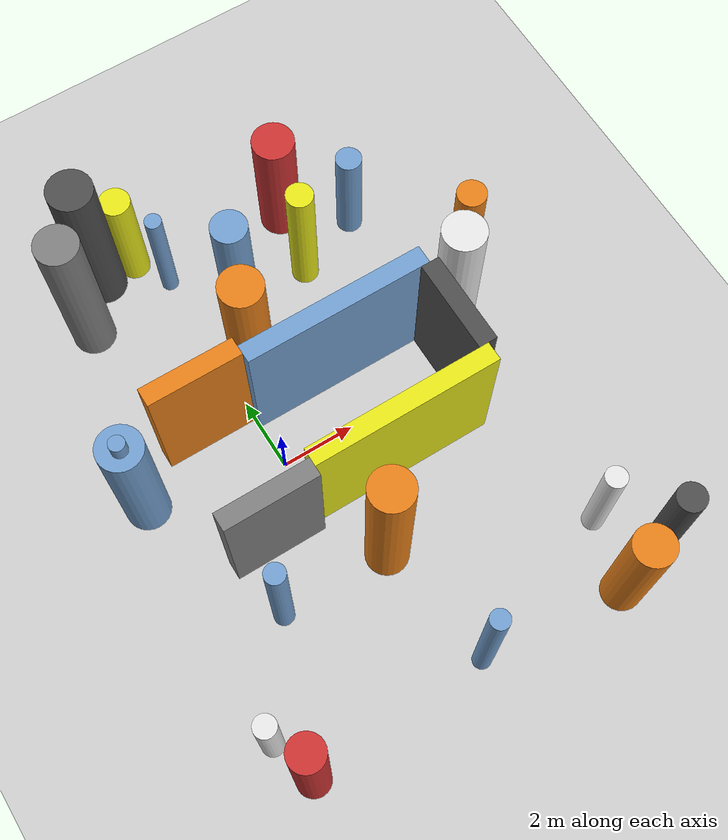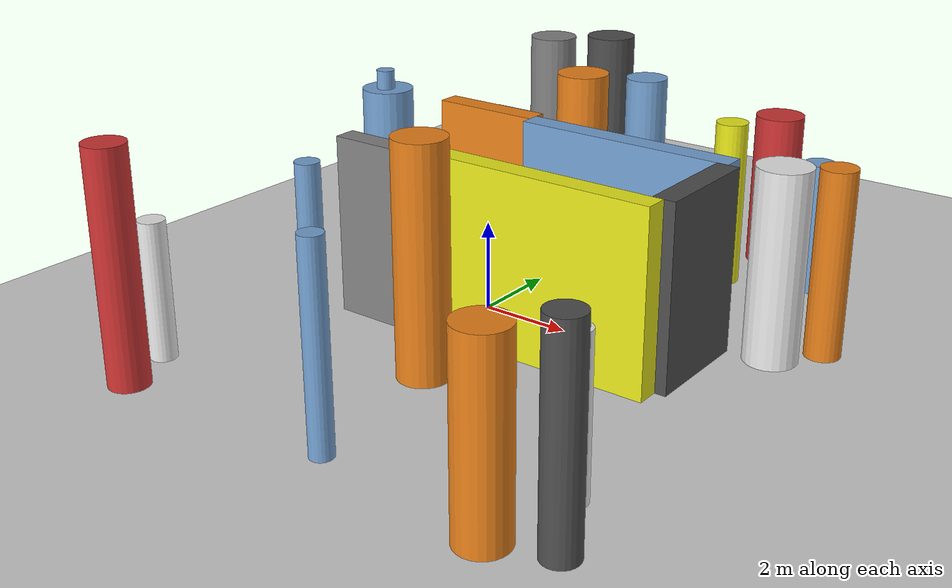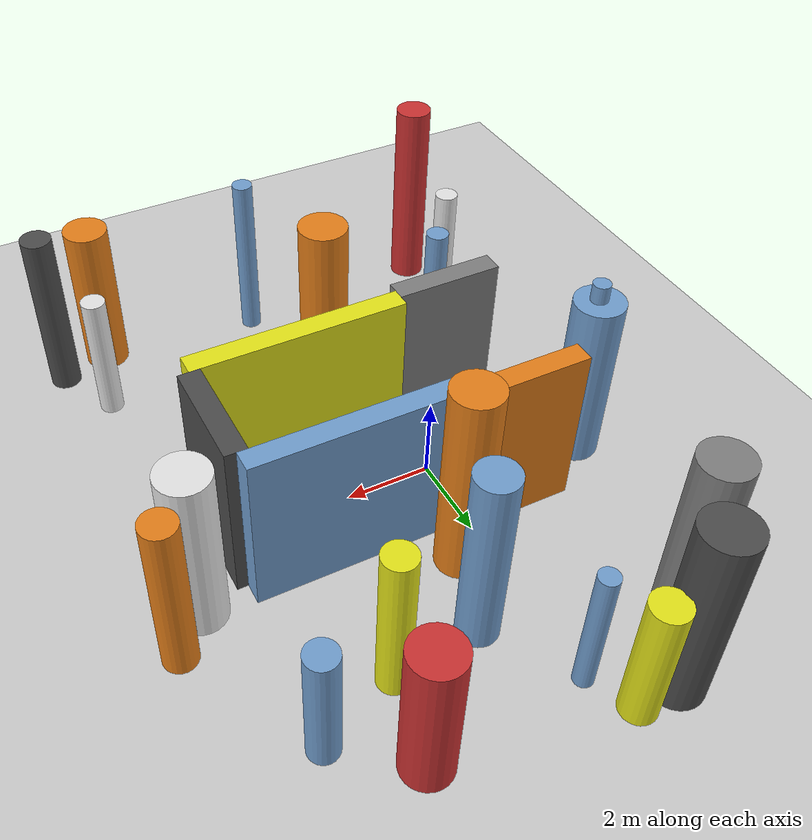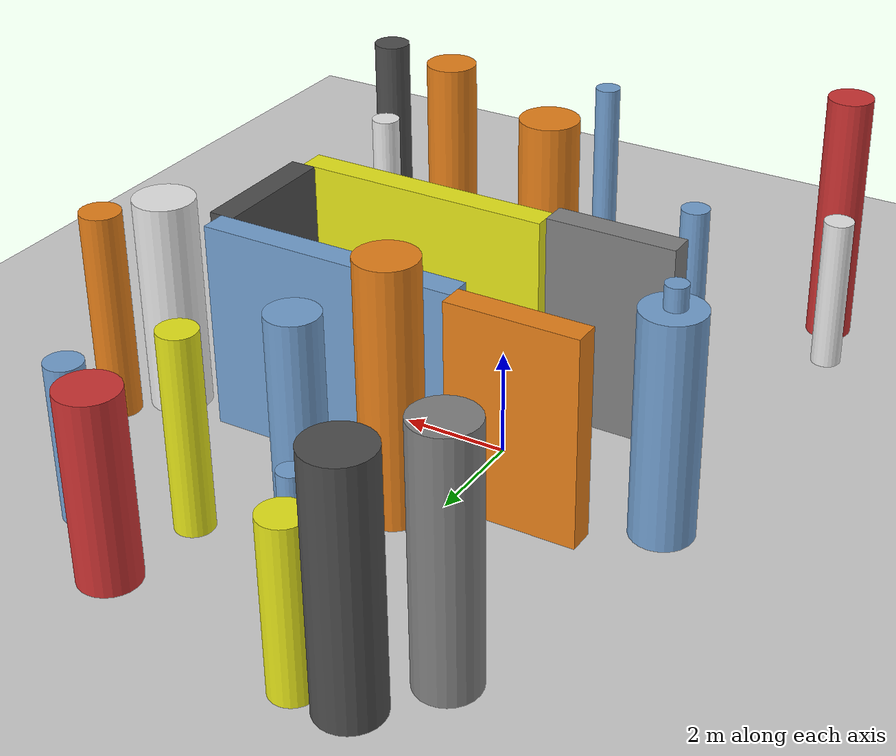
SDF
<?xml version='1.0'?>
<sdf version='1.6'>
  <world name='routeA_rl_v1__dense_recovery__rl_val__cul_de_sac_trap__000020'>
    <!-- Sun light -->
    <light name='sun' type='directional'>
      <cast_shadows>1</cast_shadows>
      <pose>0 0 10 0 0 0</pose>
      <diffuse>0.8 0.8 0.8 1</diffuse>
      <specular>0.2 0.2 0.2 1</specular>
      <attenuation>
        <range>1000</range>
        <constant>0.9</constant>
        <linear>0.01</linear>
        <quadratic>0.001</quadratic>
      </attenuation>
      <direction>-0.5 0.1 -0.9</direction>
    </light>

    <!-- Ground plane -->
    <model name='ground_plane'>
      <static>1</static>
      <link name='link'>
        <collision name='collision'>
          <geometry>
            <plane>
              <normal>0 0 1</normal>
              <size>100 100</size>
            </plane>
          </geometry>
          <surface>
            <contact>
              <collide_bitmask>65535</collide_bitmask>
              <ode/>
            </contact>
            <friction>
              <ode>
                <mu>100</mu>
                <mu2>50</mu2>
              </ode>
              <torsional><ode/></torsional>
            </friction>
            <bounce/>
          </surface>
          <max_contacts>10</max_contacts>
        </collision>
        <visual name='visual'>
          <cast_shadows>0</cast_shadows>
          <geometry>
            <plane>
              <normal>0 0 1</normal>
              <size>100 100</size>
            </plane>
          </geometry>
          <material>
            <script>
              <uri>file://media/materials/scripts/gazebo.material</uri>
              <n>Gazebo/Grey</n>
            </script>
          </material>
        </visual>
      </link>
    </model>

    <!-- Environment -->
    <magnetic_field>6e-06 2.3e-05 -4.2e-05</magnetic_field>
    <atmosphere type='adiabatic'/>
    <physics name='default_physics' default='0' type='ode'>
      <gravity>0 0 -9.8</gravity>
      <max_step_size>0.004</max_step_size>
      <real_time_factor>1</real_time_factor>
      <real_time_update_rate>250</real_time_update_rate>
    </physics>
    <scene>
      <ambient>0.4 0.4 0.4 1</ambient>
      <background>0.7 0.7 0.7 1</background>
      <shadows>1</shadows>
    </scene>
    <wind/>
    <spherical_coordinates>
      <surface_model>EARTH_WGS84</surface_model>
      <latitude_deg>0</latitude_deg>
      <longitude_deg>0</longitude_deg>
      <elevation>0</elevation>
      <heading_deg>0</heading_deg>
    </spherical_coordinates>

    <!-- ============ OBSTACLES (26) ============ -->
    <model name='trap_side_l'>
      <static>1</static>
      <link name='link'>
        <visual name='visual'>
          <geometry>
            <box>
              <size>5.0000 0.5000 4.0000</size>
            </box>
          </geometry>
          <material>
            <script>
              <n>Gazebo/Yellow</n>
              <uri>file://media/materials/scripts/gazebo.material</uri>
            </script>
            <ambient>0.9 0.9 0.1 1</ambient>
          </material>
        </visual>
        <collision name='collision'>
          <geometry>
            <box>
              <size>5.0000 0.5000 4.0000</size>
            </box>
          </geometry>
          <max_contacts>10</max_contacts>
          <surface>
            <contact><ode/></contact>
            <bounce/>
            <friction>
              <ode><mu>1</mu><mu2>1</mu2></ode>
              <torsional><ode/></torsional>
            </friction>
          </surface>
        </collision>
      </link>
      <pose>2.5000 -1.5000 2.0000 0 0 0.0000</pose>
    </model>

    <model name='trap_side_r'>
      <static>1</static>
      <link name='link'>
        <visual name='visual'>
          <geometry>
            <box>
              <size>5.0000 0.5000 4.0000</size>
            </box>
          </geometry>
          <material>
            <script>
              <n>Gazebo/Blue</n>
              <uri>file://media/materials/scripts/gazebo.material</uri>
            </script>
            <ambient>0.447 0.624 0.812 1</ambient>
          </material>
        </visual>
        <collision name='collision'>
          <geometry>
            <box>
              <size>5.0000 0.5000 4.0000</size>
            </box>
          </geometry>
          <max_contacts>10</max_contacts>
          <surface>
            <contact><ode/></contact>
            <bounce/>
            <friction>
              <ode><mu>1</mu><mu2>1</mu2></ode>
              <torsional><ode/></torsional>
            </friction>
          </surface>
        </collision>
      </link>
      <pose>2.5000 1.5000 2.0000 0 0 0.0000</pose>
    </model>

    <model name='trap_back'>
      <static>1</static>
      <link name='link'>
        <visual name='visual'>
          <geometry>
            <box>
              <size>0.5000 2.5000 4.0000</size>
            </box>
          </geometry>
          <material>
            <script>
              <n>Gazebo/DarkGrey</n>
              <uri>file://media/materials/scripts/gazebo.material</uri>
            </script>
            <ambient>0.3 0.3 0.3 1</ambient>
          </material>
        </visual>
        <collision name='collision'>
          <geometry>
            <box>
              <size>0.5000 2.5000 4.0000</size>
            </box>
          </geometry>
          <max_contacts>10</max_contacts>
          <surface>
            <contact><ode/></contact>
            <bounce/>
            <friction>
              <ode><mu>1</mu><mu2>1</mu2></ode>
              <torsional><ode/></torsional>
            </friction>
          </surface>
        </collision>
      </link>
      <pose>5.0000 0.0000 2.0000 0 0 0.0000</pose>
    </model>

    <model name='trap_funnel_l'>
      <static>1</static>
      <link name='link'>
        <visual name='visual'>
          <geometry>
            <box>
              <size>2.5000 0.5000 4.0000</size>
            </box>
          </geometry>
          <material>
            <script>
              <n>Gazebo/Grey</n>
              <uri>file://media/materials/scripts/gazebo.material</uri>
            </script>
            <ambient>0.5 0.5 0.5 1</ambient>
          </material>
        </visual>
        <collision name='collision'>
          <geometry>
            <box>
              <size>2.5000 0.5000 4.0000</size>
            </box>
          </geometry>
          <max_contacts>10</max_contacts>
          <surface>
            <contact><ode/></contact>
            <bounce/>
            <friction>
              <ode><mu>1</mu><mu2>1</mu2></ode>
              <torsional><ode/></torsional>
            </friction>
          </surface>
        </collision>
      </link>
      <pose>-1.2500 -1.7500 2.0000 0 0 0.0000</pose>
    </model>

    <model name='trap_funnel_r'>
      <static>1</static>
      <link name='link'>
        <visual name='visual'>
          <geometry>
            <box>
              <size>2.5000 0.5000 4.0000</size>
            </box>
          </geometry>
          <material>
            <script>
              <n>Gazebo/Orange</n>
              <uri>file://media/materials/scripts/gazebo.material</uri>
            </script>
            <ambient>0.9 0.5 0.1 1</ambient>
          </material>
        </visual>
        <collision name='collision'>
          <geometry>
            <box>
              <size>2.5000 0.5000 4.0000</size>
            </box>
          </geometry>
          <max_contacts>10</max_contacts>
          <surface>
            <contact><ode/></contact>
            <bounce/>
            <friction>
              <ode><mu>1</mu><mu2>1</mu2></ode>
              <torsional><ode/></torsional>
            </friction>
          </surface>
        </collision>
      </link>
      <pose>-1.2500 1.7500 2.0000 0 0 0.0000</pose>
    </model>

    <model name='trap_scatter_1'>
      <static>1</static>
      <link name='link'>
        <visual name='visual'>
          <geometry>
            <cylinder>
              <radius>0.2843</radius>
              <length>3.2258</length>
            </cylinder>
          </geometry>
          <material>
            <script>
              <n>Gazebo/White</n>
              <uri>file://media/materials/scripts/gazebo.material</uri>
            </script>
            <ambient>0.9 0.9 0.9 1</ambient>
          </material>
        </visual>
        <collision name='collision'>
          <geometry>
            <cylinder>
              <radius>0.2843</radius>
              <length>3.2258</length>
            </cylinder>
          </geometry>
          <max_contacts>10</max_contacts>
          <surface>
            <contact><ode/></contact>
            <bounce/>
            <friction>
              <ode><mu>1</mu><mu2>1</mu2></ode>
              <torsional><ode/></torsional>
            </friction>
          </surface>
        </collision>
      </link>
      <pose>5.8639 -5.3591 1.6129 0 0 0.0000</pose>
    </model>

    <model name='trap_scatter_2'>
      <static>1</static>
      <link name='link'>
        <visual name='visual'>
          <geometry>
            <cylinder>
              <radius>0.3463</radius>
              <length>3.0274</length>
            </cylinder>
          </geometry>
          <material>
            <script>
              <n>Gazebo/Blue</n>
              <uri>file://media/materials/scripts/gazebo.material</uri>
            </script>
            <ambient>0.447 0.624 0.812 1</ambient>
          </material>
        </visual>
        <collision name='collision'>
          <geometry>
            <cylinder>
              <radius>0.3463</radius>
              <length>3.0274</length>
            </cylinder>
          </geometry>
          <max_contacts>10</max_contacts>
          <surface>
            <contact><ode/></contact>
            <bounce/>
            <friction>
              <ode><mu>1</mu><mu2>1</mu2></ode>
              <torsional><ode/></torsional>
            </friction>
          </surface>
        </collision>
      </link>
      <pose>5.2068 5.2961 1.5137 0 0 0.0000</pose>
    </model>

    <model name='trap_scatter_3'>
      <static>1</static>
      <link name='link'>
        <visual name='visual'>
          <geometry>
            <cylinder>
              <radius>0.5958</radius>
              <length>4.6377</length>
            </cylinder>
          </geometry>
          <material>
            <script>
              <n>Gazebo/DarkGrey</n>
              <uri>file://media/materials/scripts/gazebo.material</uri>
            </script>
            <ambient>0.3 0.3 0.3 1</ambient>
          </material>
        </visual>
        <collision name='collision'>
          <geometry>
            <cylinder>
              <radius>0.5958</radius>
              <length>4.6377</length>
            </cylinder>
          </geometry>
          <max_contacts>10</max_contacts>
          <surface>
            <contact><ode/></contact>
            <bounce/>
            <friction>
              <ode><mu>1</mu><mu2>1</mu2></ode>
              <torsional><ode/></torsional>
            </friction>
          </surface>
        </collision>
      </link>
      <pose>-1.4748 7.1160 2.3188 0 0 0.0000</pose>
    </model>

    <model name='trap_scatter_4'>
      <static>1</static>
      <link name='link'>
        <visual name='visual'>
          <geometry>
            <cylinder>
              <radius>0.4701</radius>
              <length>4.5546</length>
            </cylinder>
          </geometry>
          <material>
            <script>
              <n>Gazebo/Blue</n>
              <uri>file://media/materials/scripts/gazebo.material</uri>
            </script>
            <ambient>0.447 0.624 0.812 1</ambient>
          </material>
        </visual>
        <collision name='collision'>
          <geometry>
            <cylinder>
              <radius>0.4701</radius>
              <length>4.5546</length>
            </cylinder>
          </geometry>
          <max_contacts>10</max_contacts>
          <surface>
            <contact><ode/></contact>
            <bounce/>
            <friction>
              <ode><mu>1</mu><mu2>1</mu2></ode>
              <torsional><ode/></torsional>
            </friction>
          </surface>
        </collision>
      </link>
      <pose>1.2798 4.2999 2.2773 0 0 0.0000</pose>
    </model>

    <model name='trap_scatter_5'>
      <static>1</static>
      <link name='link'>
        <visual name='visual'>
          <geometry>
            <cylinder>
              <radius>0.5782</radius>
              <length>4.1618</length>
            </cylinder>
          </geometry>
          <material>
            <script>
              <n>Gazebo/White</n>
              <uri>file://media/materials/scripts/gazebo.material</uri>
            </script>
            <ambient>0.9 0.9 0.9 1</ambient>
          </material>
        </visual>
        <collision name='collision'>
          <geometry>
            <cylinder>
              <radius>0.5782</radius>
              <length>4.1618</length>
            </cylinder>
          </geometry>
          <max_contacts>10</max_contacts>
          <surface>
            <contact><ode/></contact>
            <bounce/>
            <friction>
              <ode><mu>1</mu><mu2>1</mu2></ode>
              <torsional><ode/></torsional>
            </friction>
          </surface>
        </collision>
      </link>
      <pose>6.1142 1.4479 2.0809 0 0 0.0000</pose>
    </model>

    <model name='trap_scatter_6'>
      <static>1</static>
      <link name='link'>
        <visual name='visual'>
          <geometry>
            <cylinder>
              <radius>0.5815</radius>
              <length>4.2810</length>
            </cylinder>
          </geometry>
          <material>
            <script>
              <n>Gazebo/Blue</n>
              <uri>file://media/materials/scripts/gazebo.material</uri>
            </script>
            <ambient>0.447 0.624 0.812 1</ambient>
          </material>
        </visual>
        <collision name='collision'>
          <geometry>
            <cylinder>
              <radius>0.5815</radius>
              <length>4.2810</length>
            </cylinder>
          </geometry>
          <max_contacts>10</max_contacts>
          <surface>
            <contact><ode/></contact>
            <bounce/>
            <friction>
              <ode><mu>1</mu><mu2>1</mu2></ode>
              <torsional><ode/></torsional>
            </friction>
          </surface>
        </collision>
      </link>
      <pose>-3.5306 0.8192 2.1405 0 0 0.0000</pose>
    </model>

    <model name='trap_scatter_7'>
      <static>1</static>
      <link name='link'>
        <visual name='visual'>
          <geometry>
            <cylinder>
              <radius>0.3859</radius>
              <length>4.0550</length>
            </cylinder>
          </geometry>
          <material>
            <script>
              <n>Gazebo/Orange</n>
              <uri>file://media/materials/scripts/gazebo.material</uri>
            </script>
            <ambient>0.9 0.5 0.1 1</ambient>
          </material>
        </visual>
        <collision name='collision'>
          <geometry>
            <cylinder>
              <radius>0.3859</radius>
              <length>4.0550</length>
            </cylinder>
          </geometry>
          <max_contacts>10</max_contacts>
          <surface>
            <contact><ode/></contact>
            <bounce/>
            <friction>
              <ode><mu>1</mu><mu2>1</mu2></ode>
              <torsional><ode/></torsional>
            </friction>
          </surface>
        </collision>
      </link>
      <pose>6.8826 2.2773 2.0275 0 0 0.0000</pose>
    </model>

    <model name='trap_scatter_8'>
      <static>1</static>
      <link name='link'>
        <visual name='visual'>
          <geometry>
            <cylinder>
              <radius>0.5681</radius>
              <length>4.9190</length>
            </cylinder>
          </geometry>
          <material>
            <script>
              <n>Gazebo/Orange</n>
              <uri>file://media/materials/scripts/gazebo.material</uri>
            </script>
            <ambient>0.9 0.5 0.1 1</ambient>
          </material>
        </visual>
        <collision name='collision'>
          <geometry>
            <cylinder>
              <radius>0.5681</radius>
              <length>4.9190</length>
            </cylinder>
          </geometry>
          <max_contacts>10</max_contacts>
          <surface>
            <contact><ode/></contact>
            <bounce/>
            <friction>
              <ode><mu>1</mu><mu2>1</mu2></ode>
              <torsional><ode/></torsional>
            </friction>
          </surface>
        </collision>
      </link>
      <pose>0.6589 2.5912 2.4595 0 0 0.0000</pose>
    </model>

    <model name='trap_scatter_10'>
      <static>1</static>
      <link name='link'>
        <visual name='visual'>
          <geometry>
            <cylinder>
              <radius>0.5653</radius>
              <length>4.9940</length>
            </cylinder>
          </geometry>
          <material>
            <script>
              <n>Gazebo/Orange</n>
              <uri>file://media/materials/scripts/gazebo.material</uri>
            </script>
            <ambient>0.9 0.5 0.1 1</ambient>
          </material>
        </visual>
        <collision name='collision'>
          <geometry>
            <cylinder>
              <radius>0.5653</radius>
              <length>4.9940</length>
            </cylinder>
          </geometry>
          <max_contacts>10</max_contacts>
          <surface>
            <contact><ode/></contact>
            <bounce/>
            <friction>
              <ode><mu>1</mu><mu2>1</mu2></ode>
              <torsional><ode/></torsional>
            </friction>
          </surface>
        </collision>
      </link>
      <pose>0.9677 -3.3815 2.4970 0 0 0.0000</pose>
    </model>

    <model name='trap_scatter_11'>
      <static>1</static>
      <link name='link'>
        <visual name='visual'>
          <geometry>
            <cylinder>
              <radius>0.5607</radius>
              <length>3.5897</length>
            </cylinder>
          </geometry>
          <material>
            <script>
              <n>Gazebo/Red</n>
              <uri>file://media/materials/scripts/gazebo.material</uri>
            </script>
            <ambient>0.8 0.2 0.2 1</ambient>
          </material>
        </visual>
        <collision name='collision'>
          <geometry>
            <cylinder>
              <radius>0.5607</radius>
              <length>3.5897</length>
            </cylinder>
          </geometry>
          <max_contacts>10</max_contacts>
          <surface>
            <contact><ode/></contact>
            <bounce/>
            <friction>
              <ode><mu>1</mu><mu2>1</mu2></ode>
              <torsional><ode/></torsional>
            </friction>
          </surface>
        </collision>
      </link>
      <pose>3.6595 6.4181 1.7949 0 0 0.0000</pose>
    </model>

    <model name='trap_scatter_12'>
      <static>1</static>
      <link name='link'>
        <visual name='visual'>
          <geometry>
            <cylinder>
              <radius>0.3624</radius>
              <length>3.8035</length>
            </cylinder>
          </geometry>
          <material>
            <script>
              <n>Gazebo/Yellow</n>
              <uri>file://media/materials/scripts/gazebo.material</uri>
            </script>
            <ambient>0.9 0.9 0.1 1</ambient>
          </material>
        </visual>
        <collision name='collision'>
          <geometry>
            <cylinder>
              <radius>0.3624</radius>
              <length>3.8035</length>
            </cylinder>
          </geometry>
          <max_contacts>10</max_contacts>
          <surface>
            <contact><ode/></contact>
            <bounce/>
            <friction>
              <ode><mu>1</mu><mu2>1</mu2></ode>
              <torsional><ode/></torsional>
            </friction>
          </surface>
        </collision>
      </link>
      <pose>3.3587 4.5884 1.9018 0 0 0.0000</pose>
    </model>

    <model name='trap_scatter_13'>
      <static>1</static>
      <link name='link'>
        <visual name='visual'>
          <geometry>
            <cylinder>
              <radius>0.2461</radius>
              <length>4.2716</length>
            </cylinder>
          </geometry>
          <material>
            <script>
              <n>Gazebo/Blue</n>
              <uri>file://media/materials/scripts/gazebo.material</uri>
            </script>
            <ambient>0.447 0.624 0.812 1</ambient>
          </material>
        </visual>
        <collision name='collision'>
          <geometry>
            <cylinder>
              <radius>0.2461</radius>
              <length>4.2716</length>
            </cylinder>
          </geometry>
          <max_contacts>10</max_contacts>
          <surface>
            <contact><ode/></contact>
            <bounce/>
            <friction>
              <ode><mu>1</mu><mu2>1</mu2></ode>
              <torsional><ode/></torsional>
            </friction>
          </surface>
        </collision>
      </link>
      <pose>1.5004 -6.8444 2.1358 0 0 0.0000</pose>
    </model>

    <model name='trap_scatter_14'>
      <static>1</static>
      <link name='link'>
        <visual name='visual'>
          <geometry>
            <cylinder>
              <radius>0.4073</radius>
              <length>3.2134</length>
            </cylinder>
          </geometry>
          <material>
            <script>
              <n>Gazebo/Yellow</n>
              <uri>file://media/materials/scripts/gazebo.material</uri>
            </script>
            <ambient>0.9 0.9 0.1 1</ambient>
          </material>
        </visual>
        <collision name='collision'>
          <geometry>
            <cylinder>
              <radius>0.4073</radius>
              <length>3.2134</length>
            </cylinder>
          </geometry>
          <max_contacts>10</max_contacts>
          <surface>
            <contact><ode/></contact>
            <bounce/>
            <friction>
              <ode><mu>1</mu><mu2>1</mu2></ode>
              <torsional><ode/></torsional>
            </friction>
          </surface>
        </collision>
      </link>
      <pose>-0.5128 7.1966 1.6067 0 0 0.0000</pose>
    </model>

    <model name='trap_scatter_15'>
      <static>1</static>
      <link name='link'>
        <visual name='visual'>
          <geometry>
            <cylinder>
              <radius>0.5677</radius>
              <length>4.7156</length>
            </cylinder>
          </geometry>
          <material>
            <script>
              <n>Gazebo/Grey</n>
              <uri>file://media/materials/scripts/gazebo.material</uri>
            </script>
            <ambient>0.5 0.5 0.5 1</ambient>
          </material>
        </visual>
        <collision name='collision'>
          <geometry>
            <cylinder>
              <radius>0.5677</radius>
              <length>4.7156</length>
            </cylinder>
          </geometry>
          <max_contacts>10</max_contacts>
          <surface>
            <contact><ode/></contact>
            <bounce/>
            <friction>
              <ode><mu>1</mu><mu2>1</mu2></ode>
              <torsional><ode/></torsional>
            </friction>
          </surface>
        </collision>
      </link>
      <pose>-2.4217 5.9026 2.3578 0 0 0.0000</pose>
    </model>

    <model name='trap_scatter_16'>
      <static>1</static>
      <link name='link'>
        <visual name='visual'>
          <geometry>
            <cylinder>
              <radius>0.2670</radius>
              <length>3.9010</length>
            </cylinder>
          </geometry>
          <material>
            <script>
              <n>Gazebo/Blue</n>
              <uri>file://media/materials/scripts/gazebo.material</uri>
            </script>
            <ambient>0.447 0.624 0.812 1</ambient>
          </material>
        </visual>
        <collision name='collision'>
          <geometry>
            <cylinder>
              <radius>0.2670</radius>
              <length>3.9010</length>
            </cylinder>
          </geometry>
          <max_contacts>10</max_contacts>
          <surface>
            <contact><ode/></contact>
            <bounce/>
            <friction>
              <ode><mu>1</mu><mu2>1</mu2></ode>
              <torsional><ode/></torsional>
            </friction>
          </surface>
        </collision>
      </link>
      <pose>-2.0163 -3.3765 1.9505 0 0 0.0000</pose>
    </model>

    <model name='trap_scatter_17'>
      <static>1</static>
      <link name='link'>
        <visual name='visual'>
          <geometry>
            <cylinder>
              <radius>0.4356</radius>
              <length>4.9763</length>
            </cylinder>
          </geometry>
          <material>
            <script>
              <n>Gazebo/Red</n>
              <uri>file://media/materials/scripts/gazebo.material</uri>
            </script>
            <ambient>0.8 0.2 0.2 1</ambient>
          </material>
        </visual>
        <collision name='collision'>
          <geometry>
            <cylinder>
              <radius>0.4356</radius>
              <length>4.9763</length>
            </cylinder>
          </geometry>
          <max_contacts>10</max_contacts>
          <surface>
            <contact><ode/></contact>
            <bounce/>
            <friction>
              <ode><mu>1</mu><mu2>1</mu2></ode>
              <torsional><ode/></torsional>
            </friction>
          </surface>
        </collision>
      </link>
      <pose>-3.4300 -7.1375 2.4882 0 0 0.0000</pose>
    </model>

    <model name='trap_scatter_18'>
      <static>1</static>
      <link name='link'>
        <visual name='visual'>
          <geometry>
            <cylinder>
              <radius>0.2869</radius>
              <length>3.0055</length>
            </cylinder>
          </geometry>
          <material>
            <script>
              <n>Gazebo/White</n>
              <uri>file://media/materials/scripts/gazebo.material</uri>
            </script>
            <ambient>0.9 0.9 0.9 1</ambient>
          </material>
        </visual>
        <collision name='collision'>
          <geometry>
            <cylinder>
              <radius>0.2869</radius>
              <length>3.0055</length>
            </cylinder>
          </geometry>
          <max_contacts>10</max_contacts>
          <surface>
            <contact><ode/></contact>
            <bounce/>
            <friction>
              <ode><mu>1</mu><mu2>1</mu2></ode>
              <torsional><ode/></torsional>
            </friction>
          </surface>
        </collision>
      </link>
      <pose>-3.8368 -5.9407 1.5028 0 0 0.0000</pose>
    </model>

    <model name='trap_scatter_19'>
      <static>1</static>
      <link name='link'>
        <visual name='visual'>
          <geometry>
            <cylinder>
              <radius>0.5262</radius>
              <length>3.9046</length>
            </cylinder>
          </geometry>
          <material>
            <script>
              <n>Gazebo/Orange</n>
              <uri>file://media/materials/scripts/gazebo.material</uri>
            </script>
            <ambient>0.9 0.5 0.1 1</ambient>
          </material>
        </visual>
        <collision name='collision'>
          <geometry>
            <cylinder>
              <radius>0.5262</radius>
              <length>3.9046</length>
            </cylinder>
          </geometry>
          <max_contacts>10</max_contacts>
          <surface>
            <contact><ode/></contact>
            <bounce/>
            <friction>
              <ode><mu>1</mu><mu2>1</mu2></ode>
              <torsional><ode/></torsional>
            </friction>
          </surface>
        </collision>
      </link>
      <pose>5.3872 -7.2244 1.9523 0 0 0.0000</pose>
    </model>

    <model name='trap_scatter_20'>
      <static>1</static>
      <link name='link'>
        <visual name='visual'>
          <geometry>
            <cylinder>
              <radius>0.2244</radius>
              <length>3.1894</length>
            </cylinder>
          </geometry>
          <material>
            <script>
              <n>Gazebo/Blue</n>
              <uri>file://media/materials/scripts/gazebo.material</uri>
            </script>
            <ambient>0.447 0.624 0.812 1</ambient>
          </material>
        </visual>
        <collision name='collision'>
          <geometry>
            <cylinder>
              <radius>0.2244</radius>
              <length>3.1894</length>
            </cylinder>
          </geometry>
          <max_contacts>10</max_contacts>
          <surface>
            <contact><ode/></contact>
            <bounce/>
            <friction>
              <ode><mu>1</mu><mu2>1</mu2></ode>
              <torsional><ode/></torsional>
            </friction>
          </surface>
        </collision>
      </link>
      <pose>0.0441 6.2136 1.5947 0 0 0.0000</pose>
    </model>

    <model name='trap_scatter_21'>
      <static>1</static>
      <link name='link'>
        <visual name='visual'>
          <geometry>
            <cylinder>
              <radius>0.2040</radius>
              <length>4.7133</length>
            </cylinder>
          </geometry>
          <material>
            <script>
              <n>Gazebo/Blue</n>
              <uri>file://media/materials/scripts/gazebo.material</uri>
            </script>
            <ambient>0.447 0.624 0.812 1</ambient>
          </material>
        </visual>
        <collision name='collision'>
          <geometry>
            <cylinder>
              <radius>0.2040</radius>
              <length>4.7133</length>
            </cylinder>
          </geometry>
          <max_contacts>10</max_contacts>
          <surface>
            <contact><ode/></contact>
            <bounce/>
            <friction>
              <ode><mu>1</mu><mu2>1</mu2></ode>
              <torsional><ode/></torsional>
            </friction>
          </surface>
        </collision>
      </link>
      <pose>-3.5397 0.7666 2.3567 0 0 0.0000</pose>
    </model>

    <model name='trap_scatter_24'>
      <static>1</static>
      <link name='link'>
        <visual name='visual'>
          <geometry>
            <cylinder>
              <radius>0.3653</radius>
              <length>4.2662</length>
            </cylinder>
          </geometry>
          <material>
            <script>
              <n>Gazebo/DarkGrey</n>
              <uri>file://media/materials/scripts/gazebo.material</uri>
            </script>
            <ambient>0.3 0.3 0.3 1</ambient>
          </material>
        </visual>
        <collision name='collision'>
          <geometry>
            <cylinder>
              <radius>0.3653</radius>
              <length>4.2662</length>
            </cylinder>
          </geometry>
          <max_contacts>10</max_contacts>
          <surface>
            <contact><ode/></contact>
            <bounce/>
            <friction>
              <ode><mu>1</mu><mu2>1</mu2></ode>
              <torsional><ode/></torsional>
            </friction>
          </surface>
        </collision>
      </link>
      <pose>6.6045 -6.8063 2.1331 0 0 0.0000</pose>
    </model>

    <!-- GUI camera -->
    <gui fullscreen='0'>
      <camera name='user_camera'>
        <pose>-15 0 18 0 0.85 0.15</pose>
        <view_controller>orbit</view_controller>
        <projection_type>perspective</projection_type>
      </camera>
    </gui>
  </world>
</sdf>
